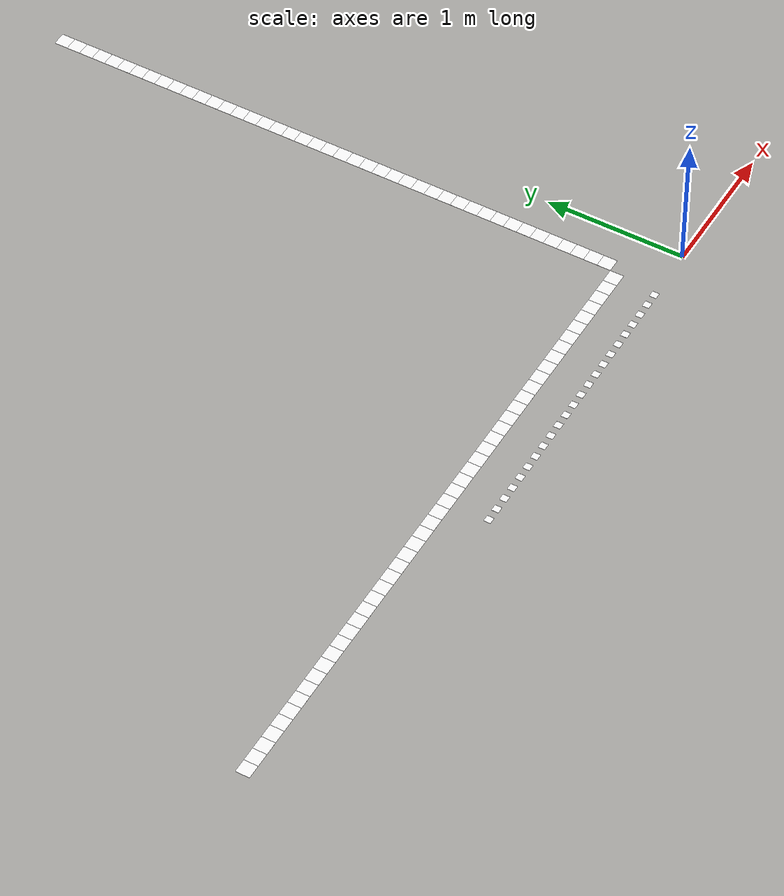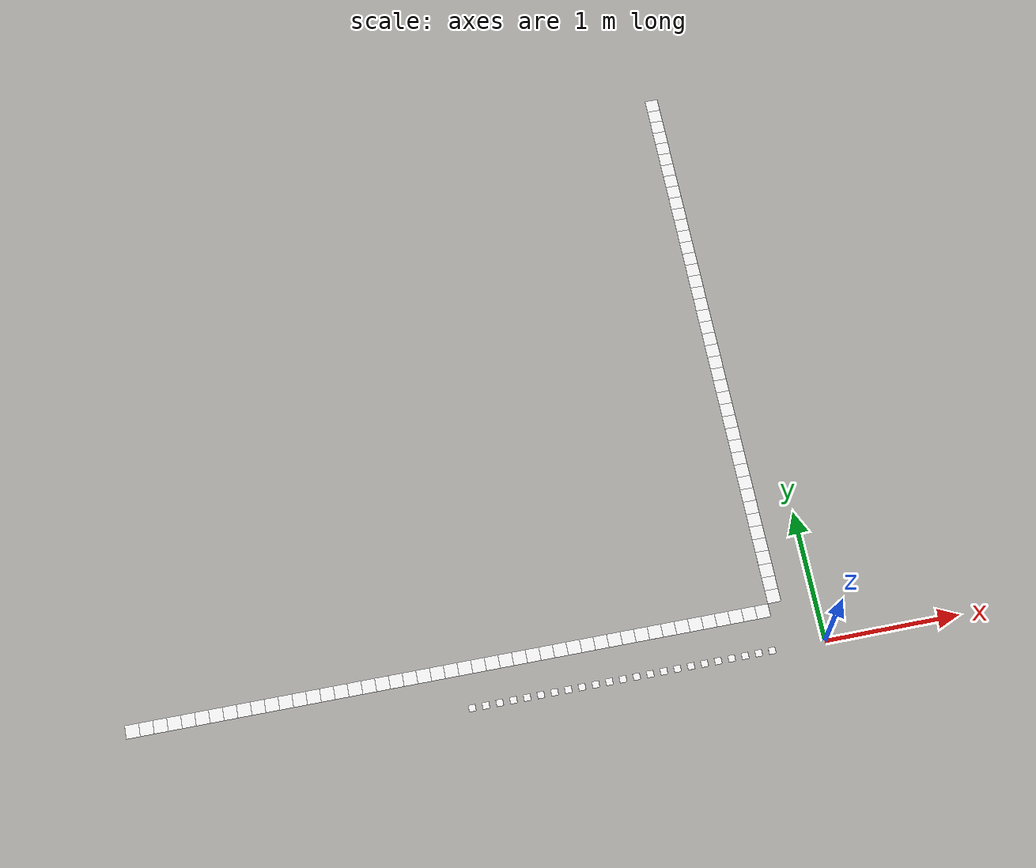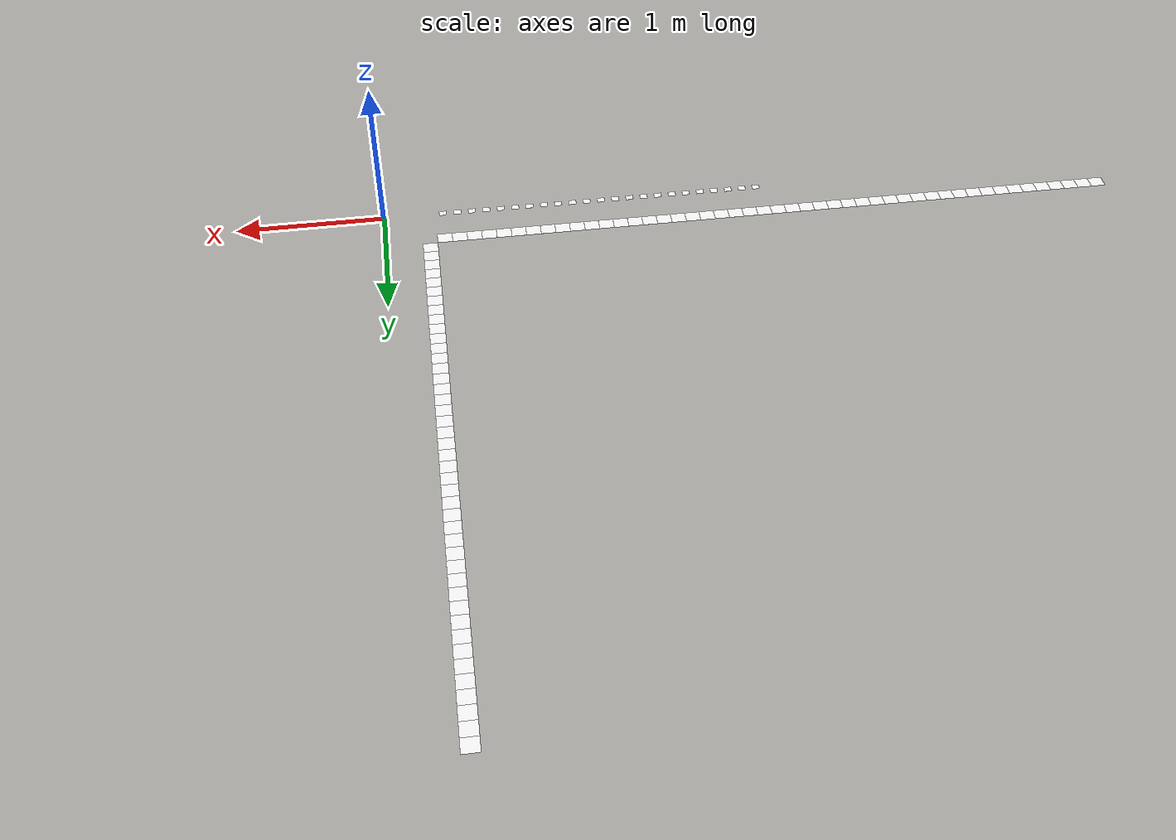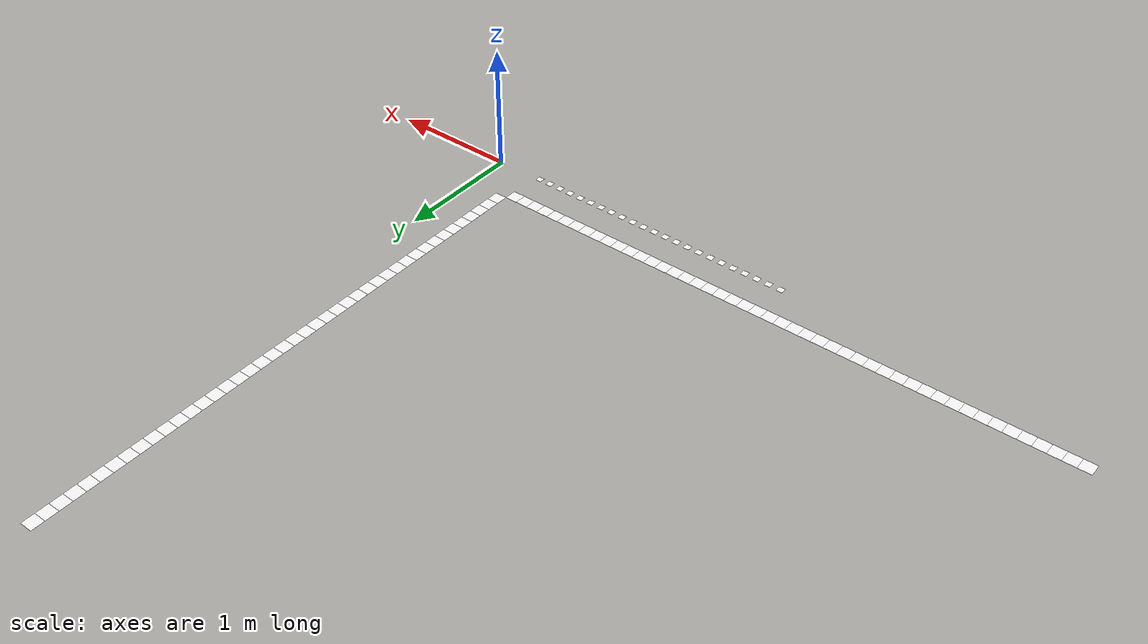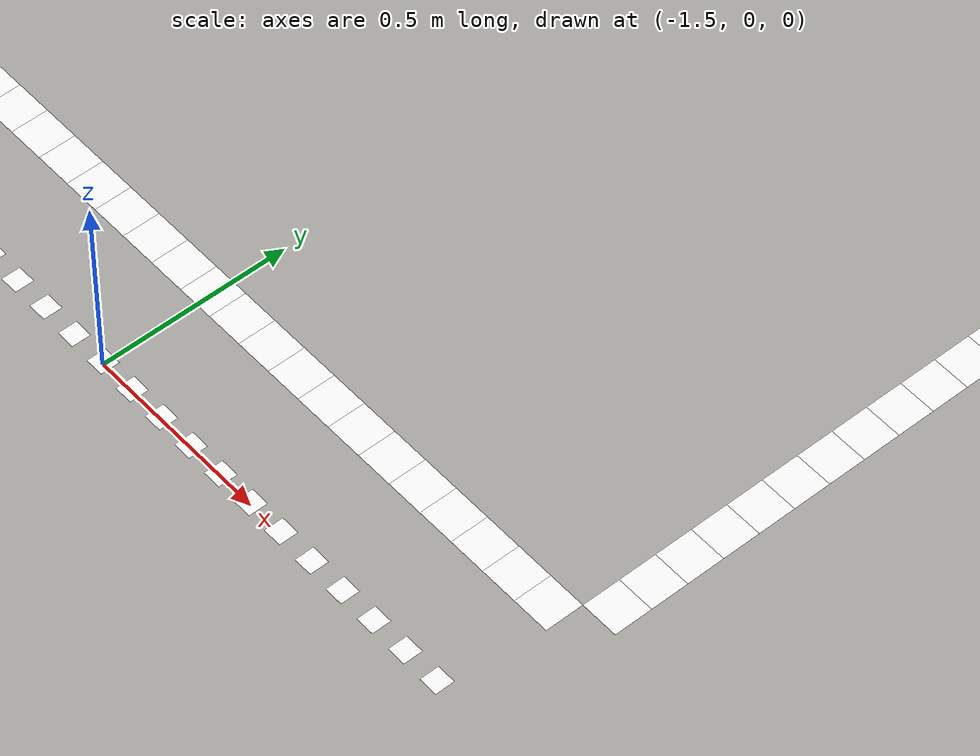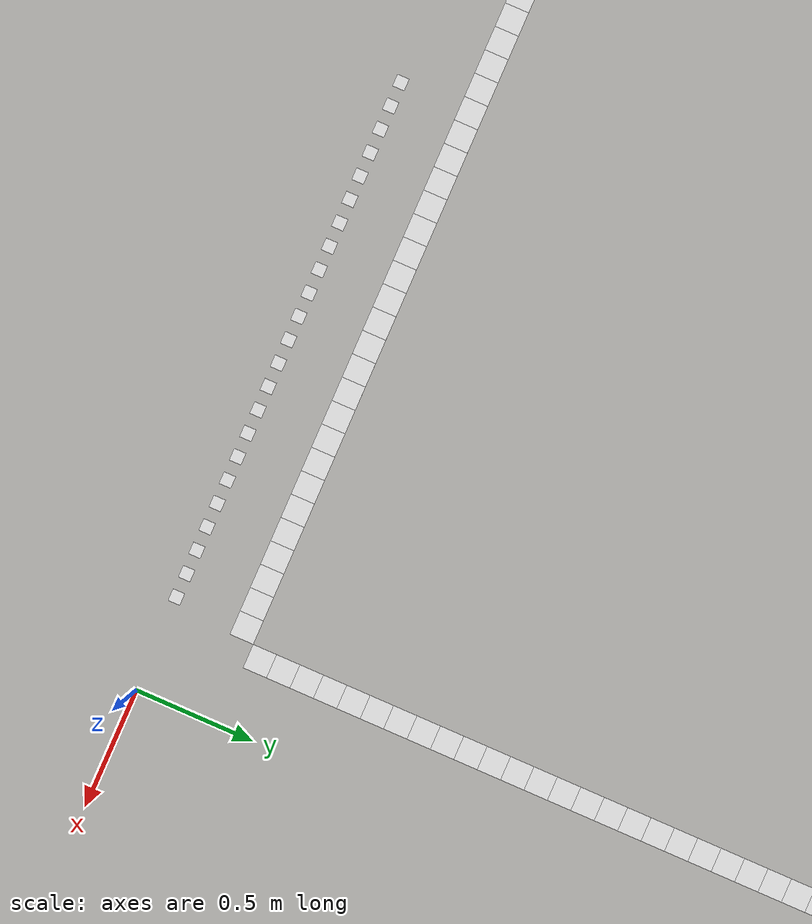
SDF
<sdf version="1.5">
 <model name="AutoNOMOS_mini_intersection">
  <static>true</static>
  <link name="L5_p4">
   <pose>-0.3 0.4 .011 0 0 0</pose>
   <visual name="visual_L5_p4">
    <cast_shadows>false</cast_shadows>
    <geometry><plane><normal>0 0 1</normal><size>.1 .1</size></plane></geometry>
    <material>
     <ambient>0 0 0 0</ambient>
     <diffuse>1 1 1 0</diffuse>
     <specular>0 0 0 0</specular>
     <emissive>0 0 0 0</emissive>
    </material>
   </visual>
  </link>
  <link name="L6_p4">
   <pose>-0.4 0.3 .011 0 0 0</pose>
   <visual name="visual_L6_p4">
    <cast_shadows>false</cast_shadows>
    <geometry><plane><normal>0 0 1</normal><size>.1 .1</size></plane></geometry>
    <material>
     <ambient>0 0 0 0</ambient>
     <diffuse>1 1 1 0</diffuse>
     <specular>0 0 0 0</specular>
     <emissive>0 0 0 0</emissive>
    </material>
   </visual>
  </link>
  <link name="L7_p4">
   <pose>-0.4 0 .011 0 0 0</pose>
   <visual name="visual_L7_p4">
    <cast_shadows>false</cast_shadows>
    <geometry><plane><normal>0 0 1</normal><size>.05 .05</size></plane></geometry>
    <material>
     <ambient>0 0 0 0</ambient>
     <diffuse>1 1 1 0</diffuse>
     <specular>0 0 0 0</specular>
     <emissive>0 0 0 0</emissive>
    </material>
   </visual>
  </link>
  <link name="L5_p5">
   <pose>-0.3 0.5 .011 0 0 0</pose>
   <visual name="visual_L5_p5">
    <cast_shadows>false</cast_shadows>
    <geometry><plane><normal>0 0 1</normal><size>.1 .1</size></plane></geometry>
    <material>
     <ambient>0 0 0 0</ambient>
     <diffuse>1 1 1 0</diffuse>
     <specular>0 0 0 0</specular>
     <emissive>0 0 0 0</emissive>
    </material>
   </visual>
  </link>
  <link name="L6_p5">
   <pose>-0.5 0.3 .011 0 0 0</pose>
   <visual name="visual_L6_p5">
    <cast_shadows>false</cast_shadows>
    <geometry><plane><normal>0 0 1</normal><size>.1 .1</size></plane></geometry>
    <material>
     <ambient>0 0 0 0</ambient>
     <diffuse>1 1 1 0</diffuse>
     <specular>0 0 0 0</specular>
     <emissive>0 0 0 0</emissive>
    </material>
   </visual>
  </link>
  <link name="L7_p5">
   <pose>-0.5 0 .011 0 0 0</pose>
   <visual name="visual_L7_p5">
    <cast_shadows>false</cast_shadows>
    <geometry><plane><normal>0 0 1</normal><size>.05 .05</size></plane></geometry>
    <material>
     <ambient>0 0 0 0</ambient>
     <diffuse>1 1 1 0</diffuse>
     <specular>0 0 0 0</specular>
     <emissive>0 0 0 0</emissive>
    </material>
   </visual>
  </link>
  <link name="L5_p6">
   <pose>-0.3 0.6 .011 0 0 0</pose>
   <visual name="visual_L5_p6">
    <cast_shadows>false</cast_shadows>
    <geometry><plane><normal>0 0 1</normal><size>.1 .1</size></plane></geometry>
    <material>
     <ambient>0 0 0 0</ambient>
     <diffuse>1 1 1 0</diffuse>
     <specular>0 0 0 0</specular>
     <emissive>0 0 0 0</emissive>
    </material>
   </visual>
  </link>
  <link name="L6_p6">
   <pose>-0.6 0.3 .011 0 0 0</pose>
   <visual name="visual_L6_p6">
    <cast_shadows>false</cast_shadows>
    <geometry><plane><normal>0 0 1</normal><size>.1 .1</size></plane></geometry>
    <material>
     <ambient>0 0 0 0</ambient>
     <diffuse>1 1 1 0</diffuse>
     <specular>0 0 0 0</specular>
     <emissive>0 0 0 0</emissive>
    </material>
   </visual>
  </link>
  <link name="L7_p6">
   <pose>-0.6 0 .011 0 0 0</pose>
   <visual name="visual_L7_p6">
    <cast_shadows>false</cast_shadows>
    <geometry><plane><normal>0 0 1</normal><size>.05 .05</size></plane></geometry>
    <material>
     <ambient>0 0 0 0</ambient>
     <diffuse>1 1 1 0</diffuse>
     <specular>0 0 0 0</specular>
     <emissive>0 0 0 0</emissive>
    </material>
   </visual>
  </link>
  <link name="L5_p7">
   <pose>-0.3 0.7 .011 0 0 0</pose>
   <visual name="visual_L5_p7">
    <cast_shadows>false</cast_shadows>
    <geometry><plane><normal>0 0 1</normal><size>.1 .1</size></plane></geometry>
    <material>
     <ambient>0 0 0 0</ambient>
     <diffuse>1 1 1 0</diffuse>
     <specular>0 0 0 0</specular>
     <emissive>0 0 0 0</emissive>
    </material>
   </visual>
  </link>
  <link name="L6_p7">
   <pose>-0.7 0.3 .011 0 0 0</pose>
   <visual name="visual_L6_p7">
    <cast_shadows>false</cast_shadows>
    <geometry><plane><normal>0 0 1</normal><size>.1 .1</size></plane></geometry>
    <material>
     <ambient>0 0 0 0</ambient>
     <diffuse>1 1 1 0</diffuse>
     <specular>0 0 0 0</specular>
     <emissive>0 0 0 0</emissive>
    </material>
   </visual>
  </link>
  <link name="L7_p7">
   <pose>-0.7 0 .011 0 0 0</pose>
   <visual name="visual_L7_p7">
    <cast_shadows>false</cast_shadows>
    <geometry><plane><normal>0 0 1</normal><size>.05 .05</size></plane></geometry>
    <material>
     <ambient>0 0 0 0</ambient>
     <diffuse>1 1 1 0</diffuse>
     <specular>0 0 0 0</specular>
     <emissive>0 0 0 0</emissive>
    </material>
   </visual>
  </link>
  <link name="L5_p8">
   <pose>-0.3 0.8 .011 0 0 0</pose>
   <visual name="visual_L5_p8">
    <cast_shadows>false</cast_shadows>
    <geometry><plane><normal>0 0 1</normal><size>.1 .1</size></plane></geometry>
    <material>
     <ambient>0 0 0 0</ambient>
     <diffuse>1 1 1 0</diffuse>
     <specular>0 0 0 0</specular>
     <emissive>0 0 0 0</emissive>
    </material>
   </visual>
  </link>
  <link name="L6_p8">
   <pose>-0.8 0.3 .011 0 0 0</pose>
   <visual name="visual_L6_p8">
    <cast_shadows>false</cast_shadows>
    <geometry><plane><normal>0 0 1</normal><size>.1 .1</size></plane></geometry>
    <material>
     <ambient>0 0 0 0</ambient>
     <diffuse>1 1 1 0</diffuse>
     <specular>0 0 0 0</specular>
     <emissive>0 0 0 0</emissive>
    </material>
   </visual>
  </link>
  <link name="L7_p8">
   <pose>-0.8 0 .011 0 0 0</pose>
   <visual name="visual_L7_p8">
    <cast_shadows>false</cast_shadows>
    <geometry><plane><normal>0 0 1</normal><size>.05 .05</size></plane></geometry>
    <material>
     <ambient>0 0 0 0</ambient>
     <diffuse>1 1 1 0</diffuse>
     <specular>0 0 0 0</specular>
     <emissive>0 0 0 0</emissive>
    </material>
   </visual>
  </link>
  <link name="L5_p9">
   <pose>-0.3 0.9 .011 0 0 0</pose>
   <visual name="visual_L5_p9">
    <cast_shadows>false</cast_shadows>
    <geometry><plane><normal>0 0 1</normal><size>.1 .1</size></plane></geometry>
    <material>
     <ambient>0 0 0 0</ambient>
     <diffuse>1 1 1 0</diffuse>
     <specular>0 0 0 0</specular>
     <emissive>0 0 0 0</emissive>
    </material>
   </visual>
  </link>
  <link name="L6_p9">
   <pose>-0.9 0.3 .011 0 0 0</pose>
   <visual name="visual_L6_p9">
    <cast_shadows>false</cast_shadows>
    <geometry><plane><normal>0 0 1</normal><size>.1 .1</size></plane></geometry>
    <material>
     <ambient>0 0 0 0</ambient>
     <diffuse>1 1 1 0</diffuse>
     <specular>0 0 0 0</specular>
     <emissive>0 0 0 0</emissive>
    </material>
   </visual>
  </link>
  <link name="L7_p9">
   <pose>-0.9 0 .011 0 0 0</pose>
   <visual name="visual_L7_p9">
    <cast_shadows>false</cast_shadows>
    <geometry><plane><normal>0 0 1</normal><size>.05 .05</size></plane></geometry>
    <material>
     <ambient>0 0 0 0</ambient>
     <diffuse>1 1 1 0</diffuse>
     <specular>0 0 0 0</specular>
     <emissive>0 0 0 0</emissive>
    </material>
   </visual>
  </link>
  <link name="L5_p10">
   <pose>-0.3 1 .011 0 0 0</pose>
   <visual name="visual_L5_p10">
    <cast_shadows>false</cast_shadows>
    <geometry><plane><normal>0 0 1</normal><size>.1 .1</size></plane></geometry>
    <material>
     <ambient>0 0 0 0</ambient>
     <diffuse>1 1 1 0</diffuse>
     <specular>0 0 0 0</specular>
     <emissive>0 0 0 0</emissive>
    </material>
   </visual>
  </link>
  <link name="L6_p10">
   <pose>-1 0.3 .011 0 0 0</pose>
   <visual name="visual_L6_p10">
    <cast_shadows>false</cast_shadows>
    <geometry><plane><normal>0 0 1</normal><size>.1 .1</size></plane></geometry>
    <material>
     <ambient>0 0 0 0</ambient>
     <diffuse>1 1 1 0</diffuse>
     <specular>0 0 0 0</specular>
     <emissive>0 0 0 0</emissive>
    </material>
   </visual>
  </link>
  <link name="L7_p10">
   <pose>-1 0 .011 0 0 0</pose>
   <visual name="visual_L7_p10">
    <cast_shadows>false</cast_shadows>
    <geometry><plane><normal>0 0 1</normal><size>.05 .05</size></plane></geometry>
    <material>
     <ambient>0 0 0 0</ambient>
     <diffuse>1 1 1 0</diffuse>
     <specular>0 0 0 0</specular>
     <emissive>0 0 0 0</emissive>
    </material>
   </visual>
  </link>
  <link name="L5_p11">
   <pose>-0.3 1.1 .011 0 0 0</pose>
   <visual name="visual_L5_p11">
    <cast_shadows>false</cast_shadows>
    <geometry><plane><normal>0 0 1</normal><size>.1 .1</size></plane></geometry>
    <material>
     <ambient>0 0 0 0</ambient>
     <diffuse>1 1 1 0</diffuse>
     <specular>0 0 0 0</specular>
     <emissive>0 0 0 0</emissive>
    </material>
   </visual>
  </link>
  <link name="L6_p11">
   <pose>-1.1 0.3 .011 0 0 0</pose>
   <visual name="visual_L6_p11">
    <cast_shadows>false</cast_shadows>
    <geometry><plane><normal>0 0 1</normal><size>.1 .1</size></plane></geometry>
    <material>
     <ambient>0 0 0 0</ambient>
     <diffuse>1 1 1 0</diffuse>
     <specular>0 0 0 0</specular>
     <emissive>0 0 0 0</emissive>
    </material>
   </visual>
  </link>
  <link name="L7_p11">
   <pose>-1.1 0 .011 0 0 0</pose>
   <visual name="visual_L7_p11">
    <cast_shadows>false</cast_shadows>
    <geometry><plane><normal>0 0 1</normal><size>.05 .05</size></plane></geometry>
    <material>
     <ambient>0 0 0 0</ambient>
     <diffuse>1 1 1 0</diffuse>
     <specular>0 0 0 0</specular>
     <emissive>0 0 0 0</emissive>
    </material>
   </visual>
  </link>
  <link name="L5_p12">
   <pose>-0.3 1.2 .011 0 0 0</pose>
   <visual name="visual_L5_p12">
    <cast_shadows>false</cast_shadows>
    <geometry><plane><normal>0 0 1</normal><size>.1 .1</size></plane></geometry>
    <material>
     <ambient>0 0 0 0</ambient>
     <diffuse>1 1 1 0</diffuse>
     <specular>0 0 0 0</specular>
     <emissive>0 0 0 0</emissive>
    </material>
   </visual>
  </link>
  <link name="L6_p12">
   <pose>-1.2 0.3 .011 0 0 0</pose>
   <visual name="visual_L6_p12">
    <cast_shadows>false</cast_shadows>
    <geometry><plane><normal>0 0 1</normal><size>.1 .1</size></plane></geometry>
    <material>
     <ambient>0 0 0 0</ambient>
     <diffuse>1 1 1 0</diffuse>
     <specular>0 0 0 0</specular>
     <emissive>0 0 0 0</emissive>
    </material>
   </visual>
  </link>
  <link name="L7_p12">
   <pose>-1.2 0 .011 0 0 0</pose>
   <visual name="visual_L7_p12">
    <cast_shadows>false</cast_shadows>
    <geometry><plane><normal>0 0 1</normal><size>.05 .05</size></plane></geometry>
    <material>
     <ambient>0 0 0 0</ambient>
     <diffuse>1 1 1 0</diffuse>
     <specular>0 0 0 0</specular>
     <emissive>0 0 0 0</emissive>
    </material>
   </visual>
  </link>
  <link name="L5_p13">
   <pose>-0.3 1.3 .011 0 0 0</pose>
   <visual name="visual_L5_p13">
    <cast_shadows>false</cast_shadows>
    <geometry><plane><normal>0 0 1</normal><size>.1 .1</size></plane></geometry>
    <material>
     <ambient>0 0 0 0</ambient>
     <diffuse>1 1 1 0</diffuse>
     <specular>0 0 0 0</specular>
     <emissive>0 0 0 0</emissive>
    </material>
   </visual>
  </link>
  <link name="L6_p13">
   <pose>-1.3 0.3 .011 0 0 0</pose>
   <visual name="visual_L6_p13">
    <cast_shadows>false</cast_shadows>
    <geometry><plane><normal>0 0 1</normal><size>.1 .1</size></plane></geometry>
    <material>
     <ambient>0 0 0 0</ambient>
     <diffuse>1 1 1 0</diffuse>
     <specular>0 0 0 0</specular>
     <emissive>0 0 0 0</emissive>
    </material>
   </visual>
  </link>
  <link name="L7_p13">
   <pose>-1.3 0 .011 0 0 0</pose>
   <visual name="visual_L7_p13">
    <cast_shadows>false</cast_shadows>
    <geometry><plane><normal>0 0 1</normal><size>.05 .05</size></plane></geometry>
    <material>
     <ambient>0 0 0 0</ambient>
     <diffuse>1 1 1 0</diffuse>
     <specular>0 0 0 0</specular>
     <emissive>0 0 0 0</emissive>
    </material>
   </visual>
  </link>
  <link name="L5_p14">
   <pose>-0.3 1.4 .011 0 0 0</pose>
   <visual name="visual_L5_p14">
    <cast_shadows>false</cast_shadows>
    <geometry><plane><normal>0 0 1</normal><size>.1 .1</size></plane></geometry>
    <material>
     <ambient>0 0 0 0</ambient>
     <diffuse>1 1 1 0</diffuse>
     <specular>0 0 0 0</specular>
     <emissive>0 0 0 0</emissive>
    </material>
   </visual>
  </link>
  <link name="L6_p14">
   <pose>-1.4 0.3 .011 0 0 0</pose>
   <visual name="visual_L6_p14">
    <cast_shadows>false</cast_shadows>
    <geometry><plane><normal>0 0 1</normal><size>.1 .1</size></plane></geometry>
    <material>
     <ambient>0 0 0 0</ambient>
     <diffuse>1 1 1 0</diffuse>
     <specular>0 0 0 0</specular>
     <emissive>0 0 0 0</emissive>
    </material>
   </visual>
  </link>
  <link name="L7_p14">
   <pose>-1.4 0 .011 0 0 0</pose>
   <visual name="visual_L7_p14">
    <cast_shadows>false</cast_shadows>
    <geometry><plane><normal>0 0 1</normal><size>.05 .05</size></plane></geometry>
    <material>
     <ambient>0 0 0 0</ambient>
     <diffuse>1 1 1 0</diffuse>
     <specular>0 0 0 0</specular>
     <emissive>0 0 0 0</emissive>
    </material>
   </visual>
  </link>
  <link name="L5_p15">
   <pose>-0.3 1.5 .011 0 0 0</pose>
   <visual name="visual_L5_p15">
    <cast_shadows>false</cast_shadows>
    <geometry><plane><normal>0 0 1</normal><size>.1 .1</size></plane></geometry>
    <material>
     <ambient>0 0 0 0</ambient>
     <diffuse>1 1 1 0</diffuse>
     <specular>0 0 0 0</specular>
     <emissive>0 0 0 0</emissive>
    </material>
   </visual>
  </link>
  <link name="L6_p15">
   <pose>-1.5 0.3 .011 0 0 0</pose>
   <visual name="visual_L6_p15">
    <cast_shadows>false</cast_shadows>
    <geometry><plane><normal>0 0 1</normal><size>.1 .1</size></plane></geometry>
    <material>
     <ambient>0 0 0 0</ambient>
     <diffuse>1 1 1 0</diffuse>
     <specular>0 0 0 0</specular>
     <emissive>0 0 0 0</emissive>
    </material>
   </visual>
  </link>
  <link name="L7_p15">
   <pose>-1.5 0 .011 0 0 0</pose>
   <visual name="visual_L7_p15">
    <cast_shadows>false</cast_shadows>
    <geometry><plane><normal>0 0 1</normal><size>.05 .05</size></plane></geometry>
    <material>
     <ambient>0 0 0 0</ambient>
     <diffuse>1 1 1 0</diffuse>
     <specular>0 0 0 0</specular>
     <emissive>0 0 0 0</emissive>
    </material>
   </visual>
  </link>
  <link name="L5_p16">
   <pose>-0.3 1.6 .011 0 0 0</pose>
   <visual name="visual_L5_p16">
    <cast_shadows>false</cast_shadows>
    <geometry><plane><normal>0 0 1</normal><size>.1 .1</size></plane></geometry>
    <material>
     <ambient>0 0 0 0</ambient>
     <diffuse>1 1 1 0</diffuse>
     <specular>0 0 0 0</specular>
     <emissive>0 0 0 0</emissive>
    </material>
   </visual>
  </link>
  <link name="L6_p16">
   <pose>-1.6 0.3 .011 0 0 0</pose>
   <visual name="visual_L6_p16">
    <cast_shadows>false</cast_shadows>
    <geometry><plane><normal>0 0 1</normal><size>.1 .1</size></plane></geometry>
    <material>
     <ambient>0 0 0 0</ambient>
     <diffuse>1 1 1 0</diffuse>
     <specular>0 0 0 0</specular>
     <emissive>0 0 0 0</emissive>
    </material>
   </visual>
  </link>
  <link name="L7_p16">
   <pose>-1.6 0 .011 0 0 0</pose>
   <visual name="visual_L7_p16">
    <cast_shadows>false</cast_shadows>
    <geometry><plane><normal>0 0 1</normal><size>.05 .05</size></plane></geometry>
    <material>
     <ambient>0 0 0 0</ambient>
     <diffuse>1 1 1 0</diffuse>
     <specular>0 0 0 0</specular>
     <emissive>0 0 0 0</emissive>
    </material>
   </visual>
  </link>
  <link name="L5_p17">
   <pose>-0.3 1.7 .011 0 0 0</pose>
   <visual name="visual_L5_p17">
    <cast_shadows>false</cast_shadows>
    <geometry><plane><normal>0 0 1</normal><size>.1 .1</size></plane></geometry>
    <material>
     <ambient>0 0 0 0</ambient>
     <diffuse>1 1 1 0</diffuse>
     <specular>0 0 0 0</specular>
     <emissive>0 0 0 0</emissive>
    </material>
   </visual>
  </link>
  <link name="L6_p17">
   <pose>-1.7 0.3 .011 0 0 0</pose>
   <visual name="visual_L6_p17">
    <cast_shadows>false</cast_shadows>
    <geometry><plane><normal>0 0 1</normal><size>.1 .1</size></plane></geometry>
    <material>
     <ambient>0 0 0 0</ambient>
     <diffuse>1 1 1 0</diffuse>
     <specular>0 0 0 0</specular>
     <emissive>0 0 0 0</emissive>
    </material>
   </visual>
  </link>
  <link name="L7_p17">
   <pose>-1.7 0 .011 0 0 0</pose>
   <visual name="visual_L7_p17">
    <cast_shadows>false</cast_shadows>
    <geometry><plane><normal>0 0 1</normal><size>.05 .05</size></plane></geometry>
    <material>
     <ambient>0 0 0 0</ambient>
     <diffuse>1 1 1 0</diffuse>
     <specular>0 0 0 0</specular>
     <emissive>0 0 0 0</emissive>
    </material>
   </visual>
  </link>
  <link name="L5_p18">
   <pose>-0.3 1.8 .011 0 0 0</pose>
   <visual name="visual_L5_p18">
    <cast_shadows>false</cast_shadows>
    <geometry><plane><normal>0 0 1</normal><size>.1 .1</size></plane></geometry>
    <material>
     <ambient>0 0 0 0</ambient>
     <diffuse>1 1 1 0</diffuse>
     <specular>0 0 0 0</specular>
     <emissive>0 0 0 0</emissive>
    </material>
   </visual>
  </link>
  <link name="L6_p18">
   <pose>-1.8 0.3 .011 0 0 0</pose>
   <visual name="visual_L6_p18">
    <cast_shadows>false</cast_shadows>
    <geometry><plane><normal>0 0 1</normal><size>.1 .1</size></plane></geometry>
    <material>
     <ambient>0 0 0 0</ambient>
     <diffuse>1 1 1 0</diffuse>
     <specular>0 0 0 0</specular>
     <emissive>0 0 0 0</emissive>
    </material>
   </visual>
  </link>
  <link name="L7_p18">
   <pose>-1.8 0 .011 0 0 0</pose>
   <visual name="visual_L7_p18">
    <cast_shadows>false</cast_shadows>
    <geometry><plane><normal>0 0 1</normal><size>.05 .05</size></plane></geometry>
    <material>
     <ambient>0 0 0 0</ambient>
     <diffuse>1 1 1 0</diffuse>
     <specular>0 0 0 0</specular>
     <emissive>0 0 0 0</emissive>
    </material>
   </visual>
  </link>
  <link name="L5_p19">
   <pose>-0.3 1.9 .011 0 0 0</pose>
   <visual name="visual_L5_p19">
    <cast_shadows>false</cast_shadows>
    <geometry><plane><normal>0 0 1</normal><size>.1 .1</size></plane></geometry>
    <material>
     <ambient>0 0 0 0</ambient>
     <diffuse>1 1 1 0</diffuse>
     <specular>0 0 0 0</specular>
     <emissive>0 0 0 0</emissive>
    </material>
   </visual>
  </link>
  <link name="L6_p19">
   <pose>-1.9 0.3 .011 0 0 0</pose>
   <visual name="visual_L6_p19">
    <cast_shadows>false</cast_shadows>
    <geometry><plane><normal>0 0 1</normal><size>.1 .1</size></plane></geometry>
    <material>
     <ambient>0 0 0 0</ambient>
     <diffuse>1 1 1 0</diffuse>
     <specular>0 0 0 0</specular>
     <emissive>0 0 0 0</emissive>
    </material>
   </visual>
  </link>
  <link name="L7_p19">
   <pose>-1.9 0 .011 0 0 0</pose>
   <visual name="visual_L7_p19">
    <cast_shadows>false</cast_shadows>
    <geometry><plane><normal>0 0 1</normal><size>.05 .05</size></plane></geometry>
    <material>
     <ambient>0 0 0 0</ambient>
     <diffuse>1 1 1 0</diffuse>
     <specular>0 0 0 0</specular>
     <emissive>0 0 0 0</emissive>
    </material>
   </visual>
  </link>
  <link name="L5_p20">
   <pose>-0.3 2 .011 0 0 0</pose>
   <visual name="visual_L5_p20">
    <cast_shadows>false</cast_shadows>
    <geometry><plane><normal>0 0 1</normal><size>.1 .1</size></plane></geometry>
    <material>
     <ambient>0 0 0 0</ambient>
     <diffuse>1 1 1 0</diffuse>
     <specular>0 0 0 0</specular>
     <emissive>0 0 0 0</emissive>
    </material>
   </visual>
  </link>
  <link name="L6_p20">
   <pose>-2 0.3 .011 0 0 0</pose>
   <visual name="visual_L6_p20">
    <cast_shadows>false</cast_shadows>
    <geometry><plane><normal>0 0 1</normal><size>.1 .1</size></plane></geometry>
    <material>
     <ambient>0 0 0 0</ambient>
     <diffuse>1 1 1 0</diffuse>
     <specular>0 0 0 0</specular>
     <emissive>0 0 0 0</emissive>
    </material>
   </visual>
  </link>
  <link name="L7_p20">
   <pose>-2 0 .011 0 0 0</pose>
   <visual name="visual_L7_p20">
    <cast_shadows>false</cast_shadows>
    <geometry><plane><normal>0 0 1</normal><size>.05 .05</size></plane></geometry>
    <material>
     <ambient>0 0 0 0</ambient>
     <diffuse>1 1 1 0</diffuse>
     <specular>0 0 0 0</specular>
     <emissive>0 0 0 0</emissive>
    </material>
   </visual>
  </link>
  <link name="L5_p21">
   <pose>-0.3 2.1 .011 0 0 0</pose>
   <visual name="visual_L5_p21">
    <cast_shadows>false</cast_shadows>
    <geometry><plane><normal>0 0 1</normal><size>.1 .1</size></plane></geometry>
    <material>
     <ambient>0 0 0 0</ambient>
     <diffuse>1 1 1 0</diffuse>
     <specular>0 0 0 0</specular>
     <emissive>0 0 0 0</emissive>
    </material>
   </visual>
  </link>
  <link name="L6_p21">
   <pose>-2.1 0.3 .011 0 0 0</pose>
   <visual name="visual_L6_p21">
    <cast_shadows>false</cast_shadows>
    <geometry><plane><normal>0 0 1</normal><size>.1 .1</size></plane></geometry>
    <material>
     <ambient>0 0 0 0</ambient>
     <diffuse>1 1 1 0</diffuse>
     <specular>0 0 0 0</specular>
     <emissive>0 0 0 0</emissive>
    </material>
   </visual>
  </link>
  <link name="L7_p21">
   <pose>-2.1 0 .011 0 0 0</pose>
   <visual name="visual_L7_p21">
    <cast_shadows>false</cast_shadows>
    <geometry><plane><normal>0 0 1</normal><size>.05 .05</size></plane></geometry>
    <material>
     <ambient>0 0 0 0</ambient>
     <diffuse>1 1 1 0</diffuse>
     <specular>0 0 0 0</specular>
     <emissive>0 0 0 0</emissive>
    </material>
   </visual>
  </link>
  <link name="L5_p22">
   <pose>-0.3 2.2 .011 0 0 0</pose>
   <visual name="visual_L5_p22">
    <cast_shadows>false</cast_shadows>
    <geometry><plane><normal>0 0 1</normal><size>.1 .1</size></plane></geometry>
    <material>
     <ambient>0 0 0 0</ambient>
     <diffuse>1 1 1 0</diffuse>
     <specular>0 0 0 0</specular>
     <emissive>0 0 0 0</emissive>
    </material>
   </visual>
  </link>
  <link name="L6_p22">
   <pose>-2.2 0.3 .011 0 0 0</pose>
   <visual name="visual_L6_p22">
    <cast_shadows>false</cast_shadows>
    <geometry><plane><normal>0 0 1</normal><size>.1 .1</size></plane></geometry>
    <material>
     <ambient>0 0 0 0</ambient>
     <diffuse>1 1 1 0</diffuse>
     <specular>0 0 0 0</specular>
     <emissive>0 0 0 0</emissive>
    </material>
   </visual>
  </link>
  <link name="L7_p22">
   <pose>-2.2 0 .011 0 0 0</pose>
   <visual name="visual_L7_p22">
    <cast_shadows>false</cast_shadows>
    <geometry><plane><normal>0 0 1</normal><size>.05 .05</size></plane></geometry>
    <material>
     <ambient>0 0 0 0</ambient>
     <diffuse>1 1 1 0</diffuse>
     <specular>0 0 0 0</specular>
     <emissive>0 0 0 0</emissive>
    </material>
   </visual>
  </link>
  <link name="L5_p23">
   <pose>-0.3 2.3 .011 0 0 0</pose>
   <visual name="visual_L5_p23">
    <cast_shadows>false</cast_shadows>
    <geometry><plane><normal>0 0 1</normal><size>.1 .1</size></plane></geometry>
    <material>
     <ambient>0 0 0 0</ambient>
     <diffuse>1 1 1 0</diffuse>
     <specular>0 0 0 0</specular>
     <emissive>0 0 0 0</emissive>
    </material>
   </visual>
  </link>
  <link name="L6_p23">
   <pose>-2.3 0.3 .011 0 0 0</pose>
   <visual name="visual_L6_p23">
    <cast_shadows>false</cast_shadows>
    <geometry><plane><normal>0 0 1</normal><size>.1 .1</size></plane></geometry>
    <material>
     <ambient>0 0 0 0</ambient>
     <diffuse>1 1 1 0</diffuse>
     <specular>0 0 0 0</specular>
     <emissive>0 0 0 0</emissive>
    </material>
   </visual>
  </link>
  <link name="L7_p23">
   <pose>-2.3 0 .011 0 0 0</pose>
   <visual name="visual_L7_p23">
    <cast_shadows>false</cast_shadows>
    <geometry><plane><normal>0 0 1</normal><size>.05 .05</size></plane></geometry>
    <material>
     <ambient>0 0 0 0</ambient>
     <diffuse>1 1 1 0</diffuse>
     <specular>0 0 0 0</specular>
     <emissive>0 0 0 0</emissive>
    </material>
   </visual>
  </link>
  <link name="L5_p24">
   <pose>-0.3 2.4 .011 0 0 0</pose>
   <visual name="visual_L5_p24">
    <cast_shadows>false</cast_shadows>
    <geometry><plane><normal>0 0 1</normal><size>.1 .1</size></plane></geometry>
    <material>
     <ambient>0 0 0 0</ambient>
     <diffuse>1 1 1 0</diffuse>
     <specular>0 0 0 0</specular>
     <emissive>0 0 0 0</emissive>
    </material>
   </visual>
  </link>
  <link name="L6_p24">
   <pose>-2.4 0.3 .011 0 0 0</pose>
   <visual name="visual_L6_p24">
    <cast_shadows>false</cast_shadows>
    <geometry><plane><normal>0 0 1</normal><size>.1 .1</size></plane></geometry>
    <material>
     <ambient>0 0 0 0</ambient>
     <diffuse>1 1 1 0</diffuse>
     <specular>0 0 0 0</specular>
     <emissive>0 0 0 0</emissive>
    </material>
   </visual>
  </link>
  <link name="L7_p24">
   <pose>-2.4 0 .011 0 0 0</pose>
   <visual name="visual_L7_p24">
    <cast_shadows>false</cast_shadows>
    <geometry><plane><normal>0 0 1</normal><size>.05 .05</size></plane></geometry>
    <material>
     <ambient>0 0 0 0</ambient>
     <diffuse>1 1 1 0</diffuse>
     <specular>0 0 0 0</specular>
     <emissive>0 0 0 0</emissive>
    </material>
   </visual>
  </link>
  <link name="L5_p25">
   <pose>-0.3 2.5 .011 0 0 0</pose>
   <visual name="visual_L5_p25">
    <cast_shadows>false</cast_shadows>
    <geometry><plane><normal>0 0 1</normal><size>.1 .1</size></plane></geometry>
    <material>
     <ambient>0 0 0 0</ambient>
     <diffuse>1 1 1 0</diffuse>
     <specular>0 0 0 0</specular>
     <emissive>0 0 0 0</emissive>
    </material>
   </visual>
  </link>
  <link name="L6_p25">
   <pose>-2.5 0.3 .011 0 0 0</pose>
   <visual name="visual_L6_p25">
    <cast_shadows>false</cast_shadows>
    <geometry><plane><normal>0 0 1</normal><size>.1 .1</size></plane></geometry>
    <material>
     <ambient>0 0 0 0</ambient>
     <diffuse>1 1 1 0</diffuse>
     <specular>0 0 0 0</specular>
     <emissive>0 0 0 0</emissive>
    </material>
   </visual>
  </link>
  <link name="L7_p25">
   <pose>-2.5 0 .011 0 0 0</pose>
   <visual name="visual_L7_p25">
    <cast_shadows>false</cast_shadows>
    <geometry><plane><normal>0 0 1</normal><size>.05 .05</size></plane></geometry>
    <material>
     <ambient>0 0 0 0</ambient>
     <diffuse>1 1 1 0</diffuse>
     <specular>0 0 0 0</specular>
     <emissive>0 0 0 0</emissive>
    </material>
   </visual>
  </link>
  <link name="L5_p26">
   <pose>-0.3 2.6 .011 0 0 0</pose>
   <visual name="visual_L5_p26">
    <cast_shadows>false</cast_shadows>
    <geometry><plane><normal>0 0 1</normal><size>.1 .1</size></plane></geometry>
    <material>
     <ambient>0 0 0 0</ambient>
     <diffuse>1 1 1 0</diffuse>
     <specular>0 0 0 0</specular>
     <emissive>0 0 0 0</emissive>
    </material>
   </visual>
  </link>
  <link name="L6_p26">
   <pose>-2.6 0.3 .011 0 0 0</pose>
   <visual name="visual_L6_p26">
    <cast_shadows>false</cast_shadows>
    <geometry><plane><normal>0 0 1</normal><size>.1 .1</size></plane></geometry>
    <material>
     <ambient>0 0 0 0</ambient>
     <diffuse>1 1 1 0</diffuse>
     <specular>0 0 0 0</specular>
     <emissive>0 0 0 0</emissive>
    </material>
   </visual>
  </link>
  <link name="L7_p26">
   <pose>-2.6 0 .011 0 0 0</pose>
   <visual name="visual_L7_p26">
    <cast_shadows>false</cast_shadows>
    <geometry><plane><normal>0 0 1</normal><size>.05 .05</size></plane></geometry>
    <material>
     <ambient>0 0 0 0</ambient>
     <diffuse>1 1 1 0</diffuse>
     <specular>0 0 0 0</specular>
     <emissive>0 0 0 0</emissive>
    </material>
   </visual>
  </link>
  <link name="L5_p27">
   <pose>-0.3 2.7 .011 0 0 0</pose>
   <visual name="visual_L5_p27">
    <cast_shadows>false</cast_shadows>
    <geometry><plane><normal>0 0 1</normal><size>.1 .1</size></plane></geometry>
    <material>
     <ambient>0 0 0 0</ambient>
     <diffuse>1 1 1 0</diffuse>
     <specular>0 0 0 0</specular>
     <emissive>0 0 0 0</emissive>
    </material>
   </visual>
  </link>
  <link name="L6_p27">
   <pose>-2.7 0.3 .011 0 0 0</pose>
   <visual name="visual_L6_p27">
    <cast_shadows>false</cast_shadows>
    <geometry><plane><normal>0 0 1</normal><size>.1 .1</size></plane></geometry>
    <material>
     <ambient>0 0 0 0</ambient>
     <diffuse>1 1 1 0</diffuse>
     <specular>0 0 0 0</specular>
     <emissive>0 0 0 0</emissive>
    </material>
   </visual>
  </link>
  <link name="L5_p28">
   <pose>-0.3 2.8 .011 0 0 0</pose>
   <visual name="visual_L5_p28">
    <cast_shadows>false</cast_shadows>
    <geometry><plane><normal>0 0 1</normal><size>.1 .1</size></plane></geometry>
    <material>
     <ambient>0 0 0 0</ambient>
     <diffuse>1 1 1 0</diffuse>
     <specular>0 0 0 0</specular>
     <emissive>0 0 0 0</emissive>
    </material>
   </visual>
  </link>
  <link name="L6_p28">
   <pose>-2.8 0.3 .011 0 0 0</pose>
   <visual name="visual_L6_p28">
    <cast_shadows>false</cast_shadows>
    <geometry><plane><normal>0 0 1</normal><size>.1 .1</size></plane></geometry>
    <material>
     <ambient>0 0 0 0</ambient>
     <diffuse>1 1 1 0</diffuse>
     <specular>0 0 0 0</specular>
     <emissive>0 0 0 0</emissive>
    </material>
   </visual>
  </link>
  <link name="L5_p29">
   <pose>-0.3 2.9 .011 0 0 0</pose>
   <visual name="visual_L5_p29">
    <cast_shadows>false</cast_shadows>
    <geometry><plane><normal>0 0 1</normal><size>.1 .1</size></plane></geometry>
    <material>
     <ambient>0 0 0 0</ambient>
     <diffuse>1 1 1 0</diffuse>
     <specular>0 0 0 0</specular>
     <emissive>0 0 0 0</emissive>
    </material>
   </visual>
  </link>
  <link name="L6_p29">
   <pose>-2.9 0.3 .011 0 0 0</pose>
   <visual name="visual_L6_p29">
    <cast_shadows>false</cast_shadows>
    <geometry><plane><normal>0 0 1</normal><size>.1 .1</size></plane></geometry>
    <material>
     <ambient>0 0 0 0</ambient>
     <diffuse>1 1 1 0</diffuse>
     <specular>0 0 0 0</specular>
     <emissive>0 0 0 0</emissive>
    </material>
   </visual>
  </link>
  <link name="L5_p30">
   <pose>-0.3 3 .011 0 0 0</pose>
   <visual name="visual_L5_p30">
    <cast_shadows>false</cast_shadows>
    <geometry><plane><normal>0 0 1</normal><size>.1 .1</size></plane></geometry>
    <material>
     <ambient>0 0 0 0</ambient>
     <diffuse>1 1 1 0</diffuse>
     <specular>0 0 0 0</specular>
     <emissive>0 0 0 0</emissive>
    </material>
   </visual>
  </link>
  <link name="L6_p30">
   <pose>-3 0.3 .011 0 0 0</pose>
   <visual name="visual_L6_p30">
    <cast_shadows>false</cast_shadows>
    <geometry><plane><normal>0 0 1</normal><size>.1 .1</size></plane></geometry>
    <material>
     <ambient>0 0 0 0</ambient>
     <diffuse>1 1 1 0</diffuse>
     <specular>0 0 0 0</specular>
     <emissive>0 0 0 0</emissive>
    </material>
   </visual>
  </link>
  <link name="L5_p31">
   <pose>-0.3 3.1 .011 0 0 0</pose>
   <visual name="visual_L5_p31">
    <cast_shadows>false</cast_shadows>
    <geometry><plane><normal>0 0 1</normal><size>.1 .1</size></plane></geometry>
    <material>
     <ambient>0 0 0 0</ambient>
     <diffuse>1 1 1 0</diffuse>
     <specular>0 0 0 0</specular>
     <emissive>0 0 0 0</emissive>
    </material>
   </visual>
  </link>
  <link name="L6_p31">
   <pose>-3.1 0.3 .011 0 0 0</pose>
   <visual name="visual_L6_p31">
    <cast_shadows>false</cast_shadows>
    <geometry><plane><normal>0 0 1</normal><size>.1 .1</size></plane></geometry>
    <material>
     <ambient>0 0 0 0</ambient>
     <diffuse>1 1 1 0</diffuse>
     <specular>0 0 0 0</specular>
     <emissive>0 0 0 0</emissive>
    </material>
   </visual>
  </link>
  <link name="L5_p32">
   <pose>-0.3 3.2 .011 0 0 0</pose>
   <visual name="visual_L5_p32">
    <cast_shadows>false</cast_shadows>
    <geometry><plane><normal>0 0 1</normal><size>.1 .1</size></plane></geometry>
    <material>
     <ambient>0 0 0 0</ambient>
     <diffuse>1 1 1 0</diffuse>
     <specular>0 0 0 0</specular>
     <emissive>0 0 0 0</emissive>
    </material>
   </visual>
  </link>
  <link name="L6_p32">
   <pose>-3.2 0.3 .011 0 0 0</pose>
   <visual name="visual_L6_p32">
    <cast_shadows>false</cast_shadows>
    <geometry><plane><normal>0 0 1</normal><size>.1 .1</size></plane></geometry>
    <material>
     <ambient>0 0 0 0</ambient>
     <diffuse>1 1 1 0</diffuse>
     <specular>0 0 0 0</specular>
     <emissive>0 0 0 0</emissive>
    </material>
   </visual>
  </link>
  <link name="L5_p33">
   <pose>-0.3 3.3 .011 0 0 0</pose>
   <visual name="visual_L5_p33">
    <cast_shadows>false</cast_shadows>
    <geometry><plane><normal>0 0 1</normal><size>.1 .1</size></plane></geometry>
    <material>
     <ambient>0 0 0 0</ambient>
     <diffuse>1 1 1 0</diffuse>
     <specular>0 0 0 0</specular>
     <emissive>0 0 0 0</emissive>
    </material>
   </visual>
  </link>
  <link name="L6_p33">
   <pose>-3.3 0.3 .011 0 0 0</pose>
   <visual name="visual_L6_p33">
    <cast_shadows>false</cast_shadows>
    <geometry><plane><normal>0 0 1</normal><size>.1 .1</size></plane></geometry>
    <material>
     <ambient>0 0 0 0</ambient>
     <diffuse>1 1 1 0</diffuse>
     <specular>0 0 0 0</specular>
     <emissive>0 0 0 0</emissive>
    </material>
   </visual>
  </link>
  <link name="L5_p34">
   <pose>-0.3 3.4 .011 0 0 0</pose>
   <visual name="visual_L5_p34">
    <cast_shadows>false</cast_shadows>
    <geometry><plane><normal>0 0 1</normal><size>.1 .1</size></plane></geometry>
    <material>
     <ambient>0 0 0 0</ambient>
     <diffuse>1 1 1 0</diffuse>
     <specular>0 0 0 0</specular>
     <emissive>0 0 0 0</emissive>
    </material>
   </visual>
  </link>
  <link name="L6_p34">
   <pose>-3.4 0.3 .011 0 0 0</pose>
   <visual name="visual_L6_p34">
    <cast_shadows>false</cast_shadows>
    <geometry><plane><normal>0 0 1</normal><size>.1 .1</size></plane></geometry>
    <material>
     <ambient>0 0 0 0</ambient>
     <diffuse>1 1 1 0</diffuse>
     <specular>0 0 0 0</specular>
     <emissive>0 0 0 0</emissive>
    </material>
   </visual>
  </link>
  <link name="L5_p35">
   <pose>-0.3 3.5 .011 0 0 0</pose>
   <visual name="visual_L5_p35">
    <cast_shadows>false</cast_shadows>
    <geometry><plane><normal>0 0 1</normal><size>.1 .1</size></plane></geometry>
    <material>
     <ambient>0 0 0 0</ambient>
     <diffuse>1 1 1 0</diffuse>
     <specular>0 0 0 0</specular>
     <emissive>0 0 0 0</emissive>
    </material>
   </visual>
  </link>
  <link name="L6_p35">
   <pose>-3.5 0.3 .011 0 0 0</pose>
   <visual name="visual_L6_p35">
    <cast_shadows>false</cast_shadows>
    <geometry><plane><normal>0 0 1</normal><size>.1 .1</size></plane></geometry>
    <material>
     <ambient>0 0 0 0</ambient>
     <diffuse>1 1 1 0</diffuse>
     <specular>0 0 0 0</specular>
     <emissive>0 0 0 0</emissive>
    </material>
   </visual>
  </link>
  <link name="L5_p36">
   <pose>-0.3 3.6 .011 0 0 0</pose>
   <visual name="visual_L5_p36">
    <cast_shadows>false</cast_shadows>
    <geometry><plane><normal>0 0 1</normal><size>.1 .1</size></plane></geometry>
    <material>
     <ambient>0 0 0 0</ambient>
     <diffuse>1 1 1 0</diffuse>
     <specular>0 0 0 0</specular>
     <emissive>0 0 0 0</emissive>
    </material>
   </visual>
  </link>
  <link name="L6_p36">
   <pose>-3.6 0.3 .011 0 0 0</pose>
   <visual name="visual_L6_p36">
    <cast_shadows>false</cast_shadows>
    <geometry><plane><normal>0 0 1</normal><size>.1 .1</size></plane></geometry>
    <material>
     <ambient>0 0 0 0</ambient>
     <diffuse>1 1 1 0</diffuse>
     <specular>0 0 0 0</specular>
     <emissive>0 0 0 0</emissive>
    </material>
   </visual>
  </link>
  <link name="L5_p37">
   <pose>-0.3 3.7 .011 0 0 0</pose>
   <visual name="visual_L5_p37">
    <cast_shadows>false</cast_shadows>
    <geometry><plane><normal>0 0 1</normal><size>.1 .1</size></plane></geometry>
    <material>
     <ambient>0 0 0 0</ambient>
     <diffuse>1 1 1 0</diffuse>
     <specular>0 0 0 0</specular>
     <emissive>0 0 0 0</emissive>
    </material>
   </visual>
  </link>
  <link name="L6_p37">
   <pose>-3.7 0.3 .011 0 0 0</pose>
   <visual name="visual_L6_p37">
    <cast_shadows>false</cast_shadows>
    <geometry><plane><normal>0 0 1</normal><size>.1 .1</size></plane></geometry>
    <material>
     <ambient>0 0 0 0</ambient>
     <diffuse>1 1 1 0</diffuse>
     <specular>0 0 0 0</specular>
     <emissive>0 0 0 0</emissive>
    </material>
   </visual>
  </link>
  <link name="L5_p38">
   <pose>-0.3 3.8 .011 0 0 0</pose>
   <visual name="visual_L5_p38">
    <cast_shadows>false</cast_shadows>
    <geometry><plane><normal>0 0 1</normal><size>.1 .1</size></plane></geometry>
    <material>
     <ambient>0 0 0 0</ambient>
     <diffuse>1 1 1 0</diffuse>
     <specular>0 0 0 0</specular>
     <emissive>0 0 0 0</emissive>
    </material>
   </visual>
  </link>
  <link name="L6_p38">
   <pose>-3.8 0.3 .011 0 0 0</pose>
   <visual name="visual_L6_p38">
    <cast_shadows>false</cast_shadows>
    <geometry><plane><normal>0 0 1</normal><size>.1 .1</size></plane></geometry>
    <material>
     <ambient>0 0 0 0</ambient>
     <diffuse>1 1 1 0</diffuse>
     <specular>0 0 0 0</specular>
     <emissive>0 0 0 0</emissive>
    </material>
   </visual>
  </link>
  <link name="L5_p39">
   <pose>-0.3 3.9 .011 0 0 0</pose>
   <visual name="visual_L5_p39">
    <cast_shadows>false</cast_shadows>
    <geometry><plane><normal>0 0 1</normal><size>.1 .1</size></plane></geometry>
    <material>
     <ambient>0 0 0 0</ambient>
     <diffuse>1 1 1 0</diffuse>
     <specular>0 0 0 0</specular>
     <emissive>0 0 0 0</emissive>
    </material>
   </visual>
  </link>
  <link name="L6_p39">
   <pose>-3.9 0.3 .011 0 0 0</pose>
   <visual name="visual_L6_p39">
    <cast_shadows>false</cast_shadows>
    <geometry><plane><normal>0 0 1</normal><size>.1 .1</size></plane></geometry>
    <material>
     <ambient>0 0 0 0</ambient>
     <diffuse>1 1 1 0</diffuse>
     <specular>0 0 0 0</specular>
     <emissive>0 0 0 0</emissive>
    </material>
   </visual>
  </link>
  <link name="L5_p40">
   <pose>-0.3 4 .011 0 0 0</pose>
   <visual name="visual_L5_p40">
    <cast_shadows>false</cast_shadows>
    <geometry><plane><normal>0 0 1</normal><size>.1 .1</size></plane></geometry>
    <material>
     <ambient>0 0 0 0</ambient>
     <diffuse>1 1 1 0</diffuse>
     <specular>0 0 0 0</specular>
     <emissive>0 0 0 0</emissive>
    </material>
   </visual>
  </link>
  <link name="L6_p40">
   <pose>-4 0.3 .011 0 0 0</pose>
   <visual name="visual_L6_p40">
    <cast_shadows>false</cast_shadows>
    <geometry><plane><normal>0 0 1</normal><size>.1 .1</size></plane></geometry>
    <material>
     <ambient>0 0 0 0</ambient>
     <diffuse>1 1 1 0</diffuse>
     <specular>0 0 0 0</specular>
     <emissive>0 0 0 0</emissive>
    </material>
   </visual>
  </link>
  <link name="L5_p41">
   <pose>-0.3 4.1 .011 0 0 0</pose>
   <visual name="visual_L5_p41">
    <cast_shadows>false</cast_shadows>
    <geometry><plane><normal>0 0 1</normal><size>.1 .1</size></plane></geometry>
    <material>
     <ambient>0 0 0 0</ambient>
     <diffuse>1 1 1 0</diffuse>
     <specular>0 0 0 0</specular>
     <emissive>0 0 0 0</emissive>
    </material>
   </visual>
  </link>
  <link name="L6_p41">
   <pose>-4.1 0.3 .011 0 0 0</pose>
   <visual name="visual_L6_p41">
    <cast_shadows>false</cast_shadows>
    <geometry><plane><normal>0 0 1</normal><size>.1 .1</size></plane></geometry>
    <material>
     <ambient>0 0 0 0</ambient>
     <diffuse>1 1 1 0</diffuse>
     <specular>0 0 0 0</specular>
     <emissive>0 0 0 0</emissive>
    </material>
   </visual>
  </link>
  <link name="L5_p42">
   <pose>-0.3 4.2 .011 0 0 0</pose>
   <visual name="visual_L5_p42">
    <cast_shadows>false</cast_shadows>
    <geometry><plane><normal>0 0 1</normal><size>.1 .1</size></plane></geometry>
    <material>
     <ambient>0 0 0 0</ambient>
     <diffuse>1 1 1 0</diffuse>
     <specular>0 0 0 0</specular>
     <emissive>0 0 0 0</emissive>
    </material>
   </visual>
  </link>
  <link name="L6_p42">
   <pose>-4.2 0.3 .011 0 0 0</pose>
   <visual name="visual_L6_p42">
    <cast_shadows>false</cast_shadows>
    <geometry><plane><normal>0 0 1</normal><size>.1 .1</size></plane></geometry>
    <material>
     <ambient>0 0 0 0</ambient>
     <diffuse>1 1 1 0</diffuse>
     <specular>0 0 0 0</specular>
     <emissive>0 0 0 0</emissive>
    </material>
   </visual>
  </link>
  <link name="L5_p43">
   <pose>-0.3 4.3 .011 0 0 0</pose>
   <visual name="visual_L5_p43">
    <cast_shadows>false</cast_shadows>
    <geometry><plane><normal>0 0 1</normal><size>.1 .1</size></plane></geometry>
    <material>
     <ambient>0 0 0 0</ambient>
     <diffuse>1 1 1 0</diffuse>
     <specular>0 0 0 0</specular>
     <emissive>0 0 0 0</emissive>
    </material>
   </visual>
  </link>
  <link name="L6_p43">
   <pose>-4.3 0.3 .011 0 0 0</pose>
   <visual name="visual_L6_p43">
    <cast_shadows>false</cast_shadows>
    <geometry><plane><normal>0 0 1</normal><size>.1 .1</size></plane></geometry>
    <material>
     <ambient>0 0 0 0</ambient>
     <diffuse>1 1 1 0</diffuse>
     <specular>0 0 0 0</specular>
     <emissive>0 0 0 0</emissive>
    </material>
   </visual>
  </link>
  <link name="L5_p44">
   <pose>-0.3 4.4 .011 0 0 0</pose>
   <visual name="visual_L5_p44">
    <cast_shadows>false</cast_shadows>
    <geometry><plane><normal>0 0 1</normal><size>.1 .1</size></plane></geometry>
    <material>
     <ambient>0 0 0 0</ambient>
     <diffuse>1 1 1 0</diffuse>
     <specular>0 0 0 0</specular>
     <emissive>0 0 0 0</emissive>
    </material>
   </visual>
  </link>
  <link name="L6_p44">
   <pose>-4.4 0.3 .011 0 0 0</pose>
   <visual name="visual_L6_p44">
    <cast_shadows>false</cast_shadows>
    <geometry><plane><normal>0 0 1</normal><size>.1 .1</size></plane></geometry>
    <material>
     <ambient>0 0 0 0</ambient>
     <diffuse>1 1 1 0</diffuse>
     <specular>0 0 0 0</specular>
     <emissive>0 0 0 0</emissive>
    </material>
   </visual>
  </link>
  <link name="L5_p45">
   <pose>-0.3 4.5 .011 0 0 0</pose>
   <visual name="visual_L5_p45">
    <cast_shadows>false</cast_shadows>
    <geometry><plane><normal>0 0 1</normal><size>.1 .1</size></plane></geometry>
    <material>
     <ambient>0 0 0 0</ambient>
     <diffuse>1 1 1 0</diffuse>
     <specular>0 0 0 0</specular>
     <emissive>0 0 0 0</emissive>
    </material>
   </visual>
  </link>
  <link name="L6_p45">
   <pose>-4.5 0.3 .011 0 0 0</pose>
   <visual name="visual_L6_p45">
    <cast_shadows>false</cast_shadows>
    <geometry><plane><normal>0 0 1</normal><size>.1 .1</size></plane></geometry>
    <material>
     <ambient>0 0 0 0</ambient>
     <diffuse>1 1 1 0</diffuse>
     <specular>0 0 0 0</specular>
     <emissive>0 0 0 0</emissive>
    </material>
   </visual>
  </link>
  <link name="L5_p46">
   <pose>-0.3 4.6 .011 0 0 0</pose>
   <visual name="visual_L5_p46">
    <cast_shadows>false</cast_shadows>
    <geometry><plane><normal>0 0 1</normal><size>.1 .1</size></plane></geometry>
    <material>
     <ambient>0 0 0 0</ambient>
     <diffuse>1 1 1 0</diffuse>
     <specular>0 0 0 0</specular>
     <emissive>0 0 0 0</emissive>
    </material>
   </visual>
  </link>
  <link name="L6_p46">
   <pose>-4.6 0.3 .011 0 0 0</pose>
   <visual name="visual_L6_p46">
    <cast_shadows>false</cast_shadows>
    <geometry><plane><normal>0 0 1</normal><size>.1 .1</size></plane></geometry>
    <material>
     <ambient>0 0 0 0</ambient>
     <diffuse>1 1 1 0</diffuse>
     <specular>0 0 0 0</specular>
     <emissive>0 0 0 0</emissive>
    </material>
   </visual>
  </link>
  <link name="L6_p47">
   <pose>-4.7 0.3 .011 0 0 0</pose>
   <visual name="visual_L6_p47">
    <cast_shadows>false</cast_shadows>
    <geometry><plane><normal>0 0 1</normal><size>.1 .1</size></plane></geometry>
    <material>
     <ambient>0 0 0 0</ambient>
     <diffuse>1 1 1 0</diffuse>
     <specular>0 0 0 0</specular>
     <emissive>0 0 0 0</emissive>
    </material>
   </visual>
  </link>
  <link name="L6_p48">
   <pose>-4.8 0.3 .011 0 0 0</pose>
   <visual name="visual_L6_p48">
    <cast_shadows>false</cast_shadows>
    <geometry><plane><normal>0 0 1</normal><size>.1 .1</size></plane></geometry>
    <material>
     <ambient>0 0 0 0</ambient>
     <diffuse>1 1 1 0</diffuse>
     <specular>0 0 0 0</specular>
     <emissive>0 0 0 0</emissive>
    </material>
   </visual>
  </link>
  <link name="L6_p49">
   <pose>-4.9 0.3 .011 0 0 0</pose>
   <visual name="visual_L6_p49">
    <cast_shadows>false</cast_shadows>
    <geometry><plane><normal>0 0 1</normal><size>.1 .1</size></plane></geometry>
    <material>
     <ambient>0 0 0 0</ambient>
     <diffuse>1 1 1 0</diffuse>
     <specular>0 0 0 0</specular>
     <emissive>0 0 0 0</emissive>
    </material>
   </visual>
  </link>
  <link name="L6_p50">
   <pose>-5 0.3 .011 0 0 0</pose>
   <visual name="visual_L6_p50">
    <cast_shadows>false</cast_shadows>
    <geometry><plane><normal>0 0 1</normal><size>.1 .1</size></plane></geometry>
    <material>
     <ambient>0 0 0 0</ambient>
     <diffuse>1 1 1 0</diffuse>
     <specular>0 0 0 0</specular>
     <emissive>0 0 0 0</emissive>
    </material>
   </visual>
  </link>
 </model>
</sdf>
